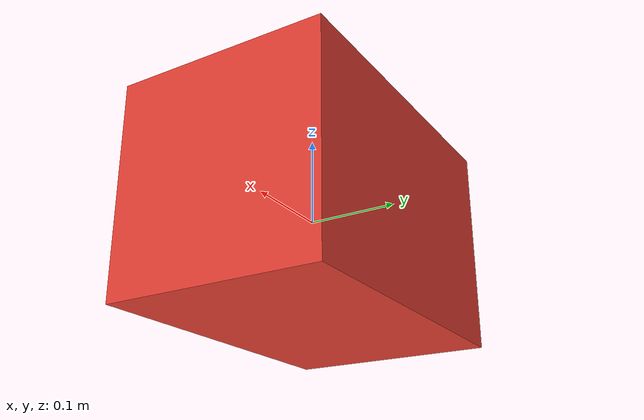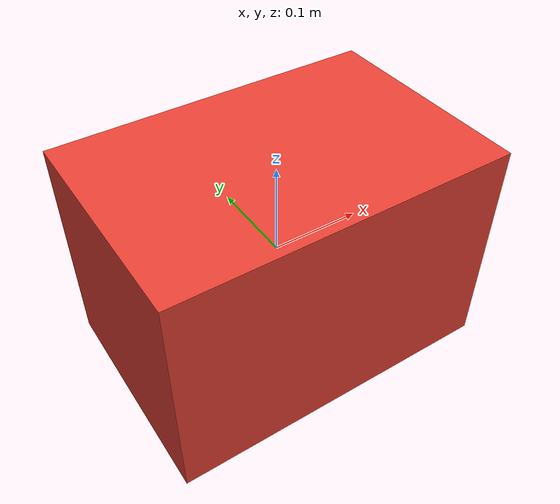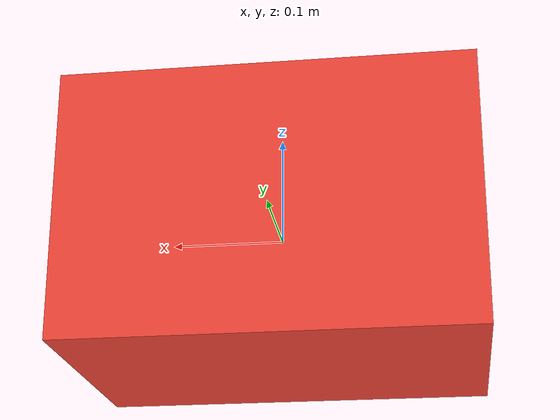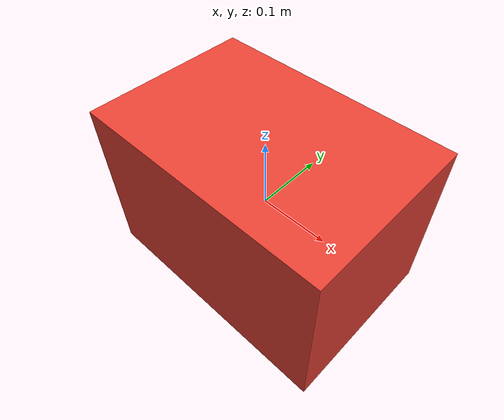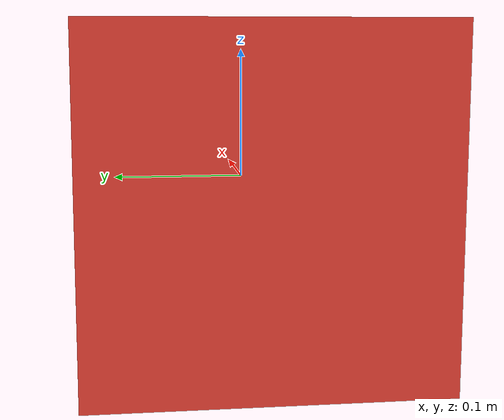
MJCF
<mujoco model="box">
  <compiler angle="degree" inertiafromgeom="true"/>
  <default>
    <geom type="box" condim="3" friction="1.0 0.05 0.05"
          solimp=".9 .99 .003" solref=".015 1" rgba="0.9 0.25 0.2 1"/>
  </default>
  <worldbody>
    <body name="box" pos="0 0 0">
      <freejoint name="root"/>
      <geom name="box_geom" type="box" size="0.18 0.12 0.12" density="600"/>
    </body>
  </worldbody>
</mujoco>
